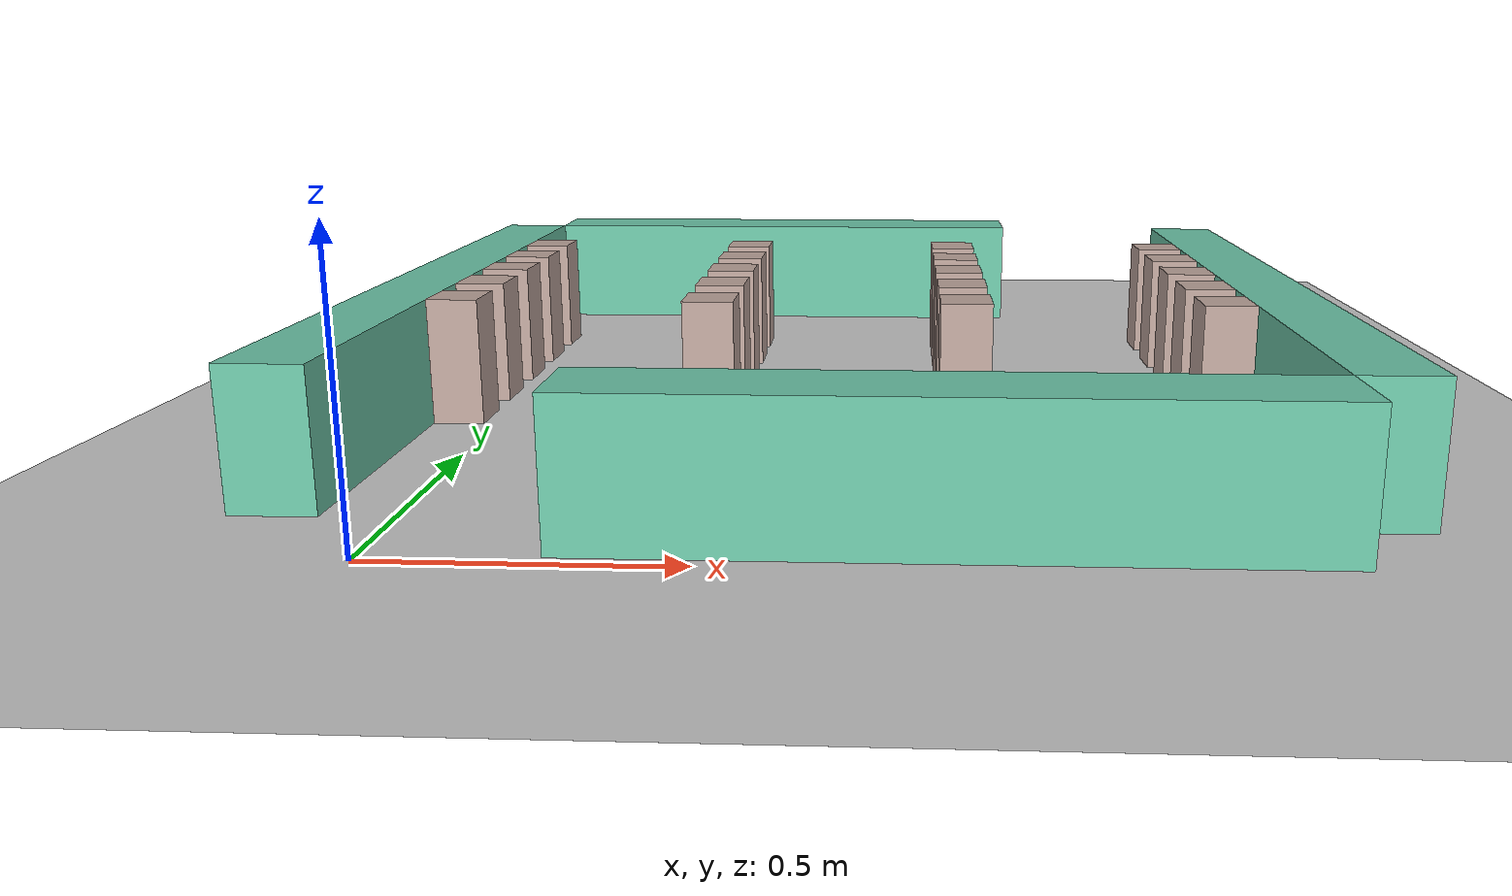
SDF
<sdf version="1.4">
 <world name="default">
  <scene><ambient>0.4 0.4 0.4 1</ambient><background>0.7 0.7 0.7 1</background><shadows>1</shadows></scene>
  <light name="sun" type="directional">
   <pose>0 0 10 0 -0 0</pose>
   <diffuse>0.8 0.8 0.8 1</diffuse>
   <specular>0.1 0.1 0.1 1</specular>
   <attenuation>
    <range>1000</range>
    <constant>0.9</constant>
    <linear>0.01</linear>
    <quadratic>0.001</quadratic>
   </attenuation>
   <direction>-0.5 0.5 -1</direction>
  </light>
  <model name="ground_plane">
   <static>1</static>
   <link name="link">
    <collision name="collision">
     <geometry><plane><normal>0 0 1</normal><size>100 100</size></plane></geometry>
     <surface><friction><ode><mu>100</mu><mu2>50</mu2></ode></friction></surface>
    </collision>
    <visual name="visual">
     <cast_shadows>0</cast_shadows>
     <geometry><plane><normal>0 0 1</normal><size>100 100</size></plane></geometry>
     <material>
      <script><uri>file://media/materials/scripts/gazebo.material</uri><name>Gazebo/Grey</name></script>
     </material>
    </visual>
   </link>
  </model>
  <physics name="default_physics" default="0" type="ode">
   <real_time_update_rate>1000</real_time_update_rate>
   <max_step_size>0.001</max_step_size>
   <real_time_factor>1</real_time_factor>
   <ode>
    <solver>
     <type>quick</type>
     <iters>150</iters>
     <precon_iters>0</precon_iters>
     <sor>1.4</sor>
     <use_dynamic_moi_rescaling>1</use_dynamic_moi_rescaling>
    </solver>
    <constraints>
     <cfm>1e-05</cfm>
     <erp>0.2</erp>
     <contact_max_correcting_vel>2000</contact_max_correcting_vel>
     <contact_surface_layer>0.01</contact_surface_layer>
    </constraints>
   </ode>
  </physics>
  <gravity>0 0 -9.8</gravity>
  <magnetic_field>6e-06 2.3e-05 -4.2e-05</magnetic_field>
  <atmosphere type="adiabatic"/>
  <spherical_coordinates>
   <surface_model>EARTH_WGS84</surface_model>
   <latitude_deg>0</latitude_deg>
   <longitude_deg>0</longitude_deg>
   <elevation>0</elevation>
   <heading_deg>0</heading_deg>
  </spherical_coordinates>
  <model name="map2_1">
   <pose>0.675 0.975 0 0 -0 0</pose>
   <link name="Wall_12">
    <collision name="Wall_12_Collision">
     <geometry><box><size>1.6 0.15 0.25</size></box></geometry>
     <pose>0 0 0.125 0 -0 0</pose>
    </collision>
    <visual name="Wall_12_Visual">
     <pose>0 0 0.125 0 -0 0</pose>
     <geometry><box><size>1.6 0.15 0.25</size></box></geometry>
     <material>
      <script><uri>file://media/materials/scripts/gazebo.material</uri><name>Gazebo/Grey</name></script>
      <ambient>0.435294 0.796078 0.67451 1</ambient>
     </material>
    </visual>
    <pose>-0.875 0 0 0 -0 1.5708</pose>
   </link>
   <link name="Wall_14">
    <collision name="Wall_14_Collision">
     <geometry><box><size>1.6 0.15 0.25</size></box></geometry>
     <pose>0 0 0.125 0 -0 0</pose>
    </collision>
    <visual name="Wall_14_Visual">
     <pose>0 0 0.125 0 -0 0</pose>
     <geometry><box><size>1.6 0.15 0.25</size></box></geometry>
     <material>
      <script><uri>file://media/materials/scripts/gazebo.material</uri><name>Gazebo/Grey</name></script>
      <ambient>0.435294 0.796078 0.67451 1</ambient>
     </material>
    </visual>
    <pose>0.875 0 0 0 -0 1.5708</pose>
   </link>
   <link name="Wall_16">
    <collision name="Wall_16_Collision">
     <geometry><box><size>1.2 0.15 0.25</size></box></geometry>
     <pose>0 0 0.125 0 -0 0</pose>
    </collision>
    <visual name="Wall_16_Visual">
     <pose>0 0 0.125 0 -0 0</pose>
     <geometry><box><size>1.2 0.15 0.25</size></box></geometry>
     <material>
      <script><uri>file://media/materials/scripts/gazebo.material</uri><name>Gazebo/Grey</name></script>
      <ambient>0.435294 0.796078 0.67451 1</ambient>
     </material>
    </visual>
    <pose>-0.2 0.875 0 0 -0 0</pose>
   </link>
   <link name="Wall_18">
    <collision name="Wall_18_Collision">
     <geometry><box><size>1.2 0.15 0.25</size></box></geometry>
     <pose>0 0 0.125 0 -0 0</pose>
    </collision>
    <visual name="Wall_18_Visual">
     <pose>0 0 0.125 0 -0 0</pose>
     <geometry><box><size>1.2 0.15 0.25</size></box></geometry>
     <material>
      <script><uri>file://media/materials/scripts/gazebo.material</uri><name>Gazebo/Grey</name></script>
      <ambient>0.435294 0.796078 0.67451 1</ambient>
     </material>
    </visual>
    <pose>0.2 -0.875 0 0 -0 0</pose>
   </link>
   <link name="Wall_20">
    <collision name="Wall_20_Collision">
     <geometry><box><size>0.1 0.1 0.25</size></box></geometry>
     <pose>0 0 0.125 0 -0 0</pose>
    </collision>
    <visual name="Wall_20_Visual">
     <pose>0 0 0.125 0 -0 0</pose>
     <geometry><box><size>0.1 0.1 0.25</size></box></geometry>
     <material>
      <script><uri>file://media/materials/scripts/gazebo.material</uri><name>Gazebo/Grey</name></script>
      <ambient>0.760784 0.662745 0.627451 1</ambient>
     </material>
    </visual>
    <pose>-0.75 0.475 0 0 -0 0</pose>
   </link>
   <link name="Wall_22">
    <collision name="Wall_22_Collision">
     <geometry><box><size>0.1 0.1 0.25</size></box></geometry>
     <pose>0 0 0.125 0 -0 0</pose>
    </collision>
    <visual name="Wall_22_Visual">
     <pose>0 0 0.125 0 -0 0</pose>
     <geometry><box><size>0.1 0.1 0.25</size></box></geometry>
     <material>
      <script><uri>file://media/materials/scripts/gazebo.material</uri><name>Gazebo/Grey</name></script>
      <ambient>0.760784 0.662745 0.627451 1</ambient>
     </material>
    </visual>
    <pose>-0.75 0.3 0 0 -0 0</pose>
   </link>
   <link name="Wall_24">
    <collision name="Wall_24_Collision">
     <geometry><box><size>0.1 0.1 0.25</size></box></geometry>
     <pose>0 0 0.125 0 -0 0</pose>
    </collision>
    <visual name="Wall_24_Visual">
     <pose>0 0 0.125 0 -0 0</pose>
     <geometry><box><size>0.1 0.1 0.25</size></box></geometry>
     <material>
      <script><uri>file://media/materials/scripts/gazebo.material</uri><name>Gazebo/Grey</name></script>
      <ambient>0.760784 0.662745 0.627451 1</ambient>
     </material>
    </visual>
    <pose>-0.75 0.125 0 0 -0 0</pose>
   </link>
   <link name="Wall_26">
    <collision name="Wall_26_Collision">
     <geometry><box><size>0.1 0.1 0.25</size></box></geometry>
     <pose>0 0 0.125 0 -0 0</pose>
    </collision>
    <visual name="Wall_26_Visual">
     <pose>0 0 0.125 0 -0 0</pose>
     <geometry><box><size>0.1 0.1 0.25</size></box></geometry>
     <material>
      <script><uri>file://media/materials/scripts/gazebo.material</uri><name>Gazebo/Grey</name></script>
      <ambient>0.760784 0.662745 0.627451 1</ambient>
     </material>
    </visual>
    <pose>-0.75 -0.05 0 0 -0 0</pose>
   </link>
   <link name="Wall_28">
    <collision name="Wall_28_Collision">
     <geometry><box><size>0.1 0.1 0.25</size></box></geometry>
     <pose>0 0 0.125 0 -0 0</pose>
    </collision>
    <visual name="Wall_28_Visual">
     <pose>0 0 0.125 0 -0 0</pose>
     <geometry><box><size>0.1 0.1 0.25</size></box></geometry>
     <material>
      <script><uri>file://media/materials/scripts/gazebo.material</uri><name>Gazebo/Grey</name></script>
      <ambient>0.760784 0.662745 0.627451 1</ambient>
     </material>
    </visual>
    <pose>-0.75 -0.225 0 0 -0 0</pose>
   </link>
   <link name="Wall_30">
    <collision name="Wall_30_Collision">
     <geometry><box><size>0.1 0.1 0.25</size></box></geometry>
     <pose>0 0 0.125 0 -0 0</pose>
    </collision>
    <visual name="Wall_30_Visual">
     <pose>0 0 0.125 0 -0 0</pose>
     <geometry><box><size>0.1 0.1 0.25</size></box></geometry>
     <material>
      <script><uri>file://media/materials/scripts/gazebo.material</uri><name>Gazebo/Grey</name></script>
      <ambient>0.760784 0.662745 0.627451 1</ambient>
     </material>
    </visual>
    <pose>-0.25 0.475 0 0 -0 0</pose>
   </link>
   <link name="Wall_33">
    <collision name="Wall_33_Collision">
     <geometry><box><size>0.1 0.1 0.25</size></box></geometry>
     <pose>0 0 0.125 0 -0 0</pose>
    </collision>
    <visual name="Wall_33_Visual">
     <pose>0 0 0.125 0 -0 0</pose>
     <geometry><box><size>0.1 0.1 0.25</size></box></geometry>
     <material>
      <script><uri>file://media/materials/scripts/gazebo.material</uri><name>Gazebo/Grey</name></script>
      <ambient>0.760784 0.662745 0.627451 1</ambient>
     </material>
    </visual>
    <pose>-0.25 0.3 0 0 -0 0</pose>
   </link>
   <link name="Wall_35">
    <collision name="Wall_35_Collision">
     <geometry><box><size>0.1 0.1 0.25</size></box></geometry>
     <pose>0 0 0.125 0 -0 0</pose>
    </collision>
    <visual name="Wall_35_Visual">
     <pose>0 0 0.125 0 -0 0</pose>
     <geometry><box><size>0.1 0.1 0.25</size></box></geometry>
     <material>
      <script><uri>file://media/materials/scripts/gazebo.material</uri><name>Gazebo/Grey</name></script>
      <ambient>0.760784 0.662745 0.627451 1</ambient>
     </material>
    </visual>
    <pose>-0.25 0.125 0 0 -0 0</pose>
   </link>
   <link name="Wall_37">
    <collision name="Wall_37_Collision">
     <geometry><box><size>0.1 0.1 0.25</size></box></geometry>
     <pose>0 0 0.125 0 -0 0</pose>
    </collision>
    <visual name="Wall_37_Visual">
     <pose>0 0 0.125 0 -0 0</pose>
     <geometry><box><size>0.1 0.1 0.25</size></box></geometry>
     <material>
      <script><uri>file://media/materials/scripts/gazebo.material</uri><name>Gazebo/Grey</name></script>
      <ambient>0.760784 0.662745 0.627451 1</ambient>
     </material>
    </visual>
    <pose>-0.25 -0.05 0 0 -0 0</pose>
   </link>
   <link name="Wall_39">
    <collision name="Wall_39_Collision">
     <geometry><box><size>0.1 0.1 0.25</size></box></geometry>
     <pose>0 0 0.125 0 -0 0</pose>
    </collision>
    <visual name="Wall_39_Visual">
     <pose>0 0 0.125 0 -0 0</pose>
     <geometry><box><size>0.1 0.1 0.25</size></box></geometry>
     <material>
      <script><uri>file://media/materials/scripts/gazebo.material</uri><name>Gazebo/Grey</name></script>
      <ambient>0.760784 0.662745 0.627451 1</ambient>
     </material>
    </visual>
    <pose>-0.25 -0.225 0 0 -0 0</pose>
   </link>
   <link name="Wall_41">
    <collision name="Wall_41_Collision">
     <geometry><box><size>0.1 0.1 0.25</size></box></geometry>
     <pose>0 0 0.125 0 -0 0</pose>
    </collision>
    <visual name="Wall_41_Visual">
     <pose>0 0 0.125 0 -0 0</pose>
     <geometry><box><size>0.1 0.1 0.25</size></box></geometry>
     <material>
      <script><uri>file://media/materials/scripts/gazebo.material</uri><name>Gazebo/Grey</name></script>
      <ambient>0.760784 0.662745 0.627451 1</ambient>
     </material>
    </visual>
    <pose>0.25 0.475 0 0 -0 0</pose>
   </link>
   <link name="Wall_43">
    <collision name="Wall_43_Collision">
     <geometry><box><size>0.1 0.1 0.25</size></box></geometry>
     <pose>0 0 0.125 0 -0 0</pose>
    </collision>
    <visual name="Wall_43_Visual">
     <pose>0 0 0.125 0 -0 0</pose>
     <geometry><box><size>0.1 0.1 0.25</size></box></geometry>
     <material>
      <script><uri>file://media/materials/scripts/gazebo.material</uri><name>Gazebo/Grey</name></script>
      <ambient>0.760784 0.662745 0.627451 1</ambient>
     </material>
    </visual>
    <pose>0.25 0.3 0 0 -0 0</pose>
   </link>
   <link name="Wall_45">
    <collision name="Wall_45_Collision">
     <geometry><box><size>0.1 0.1 0.25</size></box></geometry>
     <pose>0 0 0.125 0 -0 0</pose>
    </collision>
    <visual name="Wall_45_Visual">
     <pose>0 0 0.125 0 -0 0</pose>
     <geometry><box><size>0.1 0.1 0.25</size></box></geometry>
     <material>
      <script><uri>file://media/materials/scripts/gazebo.material</uri><name>Gazebo/Grey</name></script>
      <ambient>0.760784 0.662745 0.627451 1</ambient>
     </material>
    </visual>
    <pose>0.25 0.125 0 0 -0 0</pose>
   </link>
   <link name="Wall_47">
    <collision name="Wall_47_Collision">
     <geometry><box><size>0.1 0.1 0.25</size></box></geometry>
     <pose>0 0 0.125 0 -0 0</pose>
    </collision>
    <visual name="Wall_47_Visual">
     <pose>0 0 0.125 0 -0 0</pose>
     <geometry><box><size>0.1 0.1 0.25</size></box></geometry>
     <material>
      <script><uri>file://media/materials/scripts/gazebo.material</uri><name>Gazebo/Grey</name></script>
      <ambient>0.760784 0.662745 0.627451 1</ambient>
     </material>
    </visual>
    <pose>0.25 -0.05 0 0 -0 0</pose>
   </link>
   <link name="Wall_49">
    <collision name="Wall_49_Collision">
     <geometry><box><size>0.1 0.1 0.25</size></box></geometry>
     <pose>0 0 0.125 0 -0 0</pose>
    </collision>
    <visual name="Wall_49_Visual">
     <pose>0 0 0.125 0 -0 0</pose>
     <geometry><box><size>0.1 0.1 0.25</size></box></geometry>
     <material>
      <script><uri>file://media/materials/scripts/gazebo.material</uri><name>Gazebo/Grey</name></script>
      <ambient>0.760784 0.662745 0.627451 1</ambient>
     </material>
    </visual>
    <pose>0.25 -0.225 0 0 -0 0</pose>
   </link>
   <link name="Wall_51">
    <collision name="Wall_51_Collision">
     <geometry><box><size>0.1 0.1 0.25</size></box></geometry>
     <pose>0 0 0.125 0 -0 0</pose>
    </collision>
    <visual name="Wall_51_Visual">
     <pose>0 0 0.125 0 -0 0</pose>
     <geometry><box><size>0.1 0.1 0.25</size></box></geometry>
     <material>
      <script><uri>file://media/materials/scripts/gazebo.material</uri><name>Gazebo/Grey</name></script>
      <ambient>0.760784 0.662745 0.627451 1</ambient>
     </material>
    </visual>
    <pose>0.75 0.475 0 0 -0 0</pose>
   </link>
   <link name="Wall_53">
    <collision name="Wall_53_Collision">
     <geometry><box><size>0.1 0.1 0.25</size></box></geometry>
     <pose>0 0 0.125 0 -0 0</pose>
    </collision>
    <visual name="Wall_53_Visual">
     <pose>0 0 0.125 0 -0 0</pose>
     <geometry><box><size>0.1 0.1 0.25</size></box></geometry>
     <material>
      <script><uri>file://media/materials/scripts/gazebo.material</uri><name>Gazebo/Grey</name></script>
      <ambient>0.760784 0.662745 0.627451 1</ambient>
     </material>
    </visual>
    <pose>0.75 0.3 0 0 -0 0</pose>
   </link>
   <link name="Wall_55">
    <collision name="Wall_55_Collision">
     <geometry><box><size>0.1 0.1 0.25</size></box></geometry>
     <pose>0 0 0.125 0 -0 0</pose>
    </collision>
    <visual name="Wall_55_Visual">
     <pose>0 0 0.125 0 -0 0</pose>
     <geometry><box><size>0.1 0.1 0.25</size></box></geometry>
     <material>
      <script><uri>file://media/materials/scripts/gazebo.material</uri><name>Gazebo/Grey</name></script>
      <ambient>0.760784 0.662745 0.627451 1</ambient>
     </material>
    </visual>
    <pose>0.75 0.125 0 0 -0 0</pose>
   </link>
   <link name="Wall_57">
    <collision name="Wall_57_Collision">
     <geometry><box><size>0.1 0.1 0.25</size></box></geometry>
     <pose>0 0 0.125 0 -0 0</pose>
    </collision>
    <visual name="Wall_57_Visual">
     <pose>0 0 0.125 0 -0 0</pose>
     <geometry><box><size>0.1 0.1 0.25</size></box></geometry>
     <material>
      <script><uri>file://media/materials/scripts/gazebo.material</uri><name>Gazebo/Grey</name></script>
      <ambient>0.760784 0.662745 0.627451 1</ambient>
     </material>
    </visual>
    <pose>0.75 -0.05 0 0 -0 0</pose>
   </link>
   <link name="Wall_59">
    <collision name="Wall_59_Collision">
     <geometry><box><size>0.1 0.1 0.25</size></box></geometry>
     <pose>0 0 0.125 0 -0 0</pose>
    </collision>
    <visual name="Wall_59_Visual">
     <pose>0 0 0.125 0 -0 0</pose>
     <geometry><box><size>0.1 0.1 0.25</size></box></geometry>
     <material>
      <script><uri>file://media/materials/scripts/gazebo.material</uri><name>Gazebo/Grey</name></script>
      <ambient>0.760784 0.662745 0.627451 1</ambient>
     </material>
    </visual>
    <pose>0.75 -0.225 0 0 -0 0</pose>
   </link>
   <static>1</static>
  </model>
  <scene><ambient>0.4 0.4 0.4 1</ambient><background>0.7 0.7 0.7 1</background><shadows>true</shadows></scene>
  <include><uri>model://sun</uri></include>
  <include><uri>model://ground_plane</uri></include>
  <physics type="ode">
   <real_time_update_rate>1000.0</real_time_update_rate>
   <max_step_size>0.001</max_step_size>
   <real_time_factor>1</real_time_factor>
   <ode>
    <solver>
     <type>quick</type>
     <iters>150</iters>
     <precon_iters>0</precon_iters>
     <sor>1.400000</sor>
     <use_dynamic_moi_rescaling>1</use_dynamic_moi_rescaling>
    </solver>
    <constraints>
     <cfm>0.00001</cfm>
     <erp>0.2</erp>
     <contact_max_correcting_vel>2000.000000</contact_max_correcting_vel>
     <contact_surface_layer>0.01000</contact_surface_layer>
    </constraints>
   </ode>
  </physics>
 </world>
</sdf>
